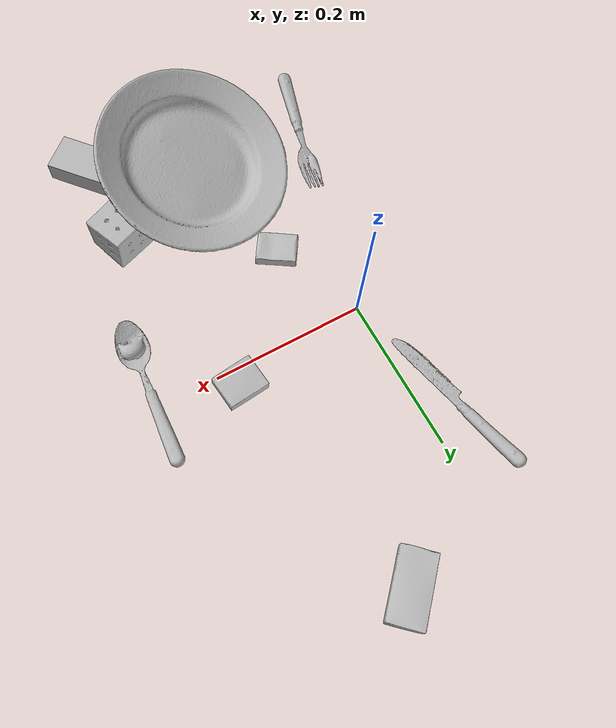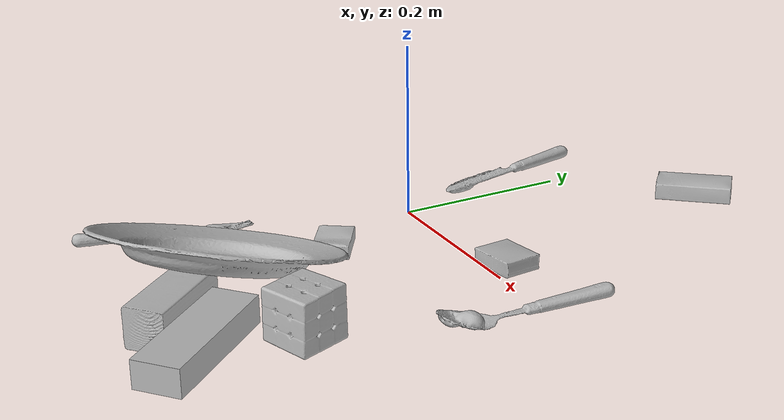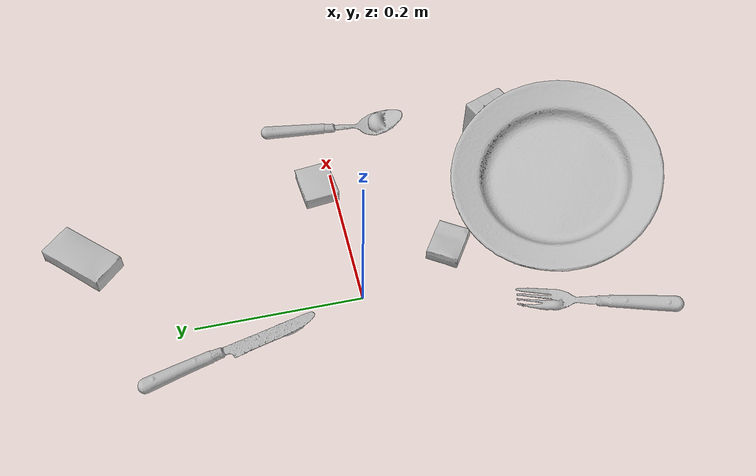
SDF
<sdf version="1.4">
  <world name="default">
    <light name="light1" type="point">
      <pose>0 0 1 0 0 0</pose>
      <diffuse>3 3 3 1</diffuse>
      <specular>3 3 3 1</specular>
    </light>
    <light name="light2" type="point">
      <pose>0 0.5 2 0 0 0</pose>
      <diffuse>1 1 1 1</diffuse>
      <specular>1 1 1 1</specular>
    </light>
    <light name="light3" type="point">
      <pose>0 0.5 2 0 0 0</pose>
      <diffuse>3 3 3 1</diffuse>
      <specular>3 3 3 1</specular>
    </light>
    <scene>
      <ambient>0.7 0.7 0.7</ambient>
    </scene>
    <model name="box11">
      <link name="link_box11">
        <collision name="default">
          <geometry>
            <mesh>
              <uri>model://pudding_box/collision_meshes/collision.obj</uri>
              <scale>0.5 0.5 0.5</scale>
            </mesh>
          </geometry>
          <surface>
            <friction>
              <ode>
                <mu>0.5</mu>
                <mu2>0.5</mu2>
              </ode>
            </friction>
          <contact>
        <ode>
            <max_vel>0</max_vel>
            <min_depth>0.0001</min_depth>
            <kp>1e8</kp>
        </ode>
    </contact></surface>
        </collision>
        <visual name="default">
          <geometry>
            <mesh>
              <uri>model://pudding_box/visual_meshes/visual.dae</uri>
              <scale>0.5 0.5 0.5</scale>
            </mesh>
          </geometry>
        </visual>
        <inertial>
          <mass>0.05641884729266167</mass>
          <pose>0.00024474109522998333 0.000403394311433658 -0.00025944141088984907 0.005213101771016666 -0.006603799659696515 0.020079828883224148</pose>
          <inertia>
            <ixx>1.5944652e-05</ixx>
            <iyy>1.0727675e-05</iyy>
            <izz>2.3546443e-05</izz>
            <ixy>0</ixy>
            <ixz>0</ixz>
            <iyz>0</iyz>
          </inertia>
        </inertial>
      </link>
      <pose>0.17850929498672485 0.021386820822954178 0.009862900711596012 0.022348489860508927 -0.011391752270959683 -1.4615028792708957</pose>
    </model>
    <model name="box12">
      <link name="link_box12">
        <collision name="default">
          <geometry>
            <mesh>
              <uri>model://wood_block/collision_meshes/collision.obj</uri>
              <scale>0.5 0.5 0.5</scale>
            </mesh>
          </geometry>
          <surface>
            <friction>
              <ode>
                <mu>0.5</mu>
                <mu2>0.5</mu2>
              </ode>
            </friction>
          <contact>
        <ode>
            <max_vel>0</max_vel>
            <min_depth>0.0001</min_depth>
            <kp>1e8</kp>
        </ode>
    </contact></surface>
        </collision>
        <visual name="default">
          <geometry>
            <mesh>
              <uri>model://wood_block/visual_meshes/visual.dae</uri>
              <scale>0.5 0.5 0.5</scale>
            </mesh>
          </geometry>
        </visual>
        <inertial>
          <mass>0.1445801854133606</mass>
          <pose>-2.906657982748584e-06 -0.000285404734313488 0.00013204291462898254 -0.052208162951624955 -0.0051926954609686745 -0.006861377578377277</pose>
          <inertia>
            <ixx>4.836754e-05</ixx>
            <iyy>0.0001527931</iyy>
            <izz>0.00015222155</izz>
            <ixy>0</ixy>
            <ixz>0</ixz>
            <iyz>0</iyz>
          </inertia>
        </inertial>
      </link>
      <pose>0.1386599838733673 -0.33186012506484985 0.02262934297323227 -0.005204385406094369 0.0057159789424755915 -0.8542359586251745</pose>
    </model>
    <model name="box13">
      <link name="link_box13">
        <collision name="default">
          <geometry>
            <mesh>
              <uri>model://sugar_box/collision_meshes/collision.obj</uri>
              <scale>0.5 0.5 0.5</scale>
            </mesh>
          </geometry>
          <surface>
            <friction>
              <ode>
                <mu>0.5</mu>
                <mu2>0.5</mu2>
              </ode>
            </friction>
          <contact>
        <ode>
            <max_vel>0</max_vel>
            <min_depth>0.0001</min_depth>
            <kp>1e8</kp>
        </ode>
    </contact></surface>
        </collision>
        <visual name="default">
          <geometry>
            <mesh>
              <uri>model://sugar_box/visual_meshes/visual.dae</uri>
              <scale>0.5 0.5 0.5</scale>
            </mesh>
          </geometry>
        </visual>
        <inertial>
          <mass>0.1187032163143158</mass>
          <pose>0.0005171863595023751 1.924554817378521e-05 -0.00018182402709499002 -0.0004046259512710581 0.0010506635216588768 0.002615378556274426</pose>
          <inertia>
            <ixx>2.4725794e-05</ixx>
            <iyy>7.991886e-05</iyy>
            <izz>9.567241e-05</izz>
            <ixy>0</ixy>
            <ixz>0</ixz>
            <iyz>0</iyz>
          </inertia>
        </inertial>
      </link>
      <pose>0.12310755997896194 0.3222801983356476 0.01139929611235857 0.000775301211240236 -0.02343322739087823 0.8049990126982492</pose>
    </model>
    <model name="box21">
      <link name="link_box21">
        <collision name="default">
          <geometry>
            <mesh>
              <uri>model://jenga/collision_meshes/collision.obj</uri>
              <scale>1.0 1.0 1.0</scale>
            </mesh>
          </geometry>
          <surface>
            <friction>
              <ode>
                <mu>0.5</mu>
                <mu2>0.5</mu2>
              </ode>
            </friction>
          <contact>
        <ode>
            <max_vel>0</max_vel>
            <min_depth>0.0001</min_depth>
            <kp>1e8</kp>
        </ode>
    </contact></surface>
        </collision>
        <visual name="default">
          <geometry>
            <mesh>
              <uri>model://jenga/visual_meshes/visual.dae</uri>
              <scale>1.0 1.0 1.0</scale>
            </mesh>
          </geometry>
        </visual>
        <inertial>
          <mass>0.20898528397083282</mass>
          <pose>-2.502855807051674e-07 -0.00010250010382151231 -4.092339804628864e-05 0.0 -7.342154049184251e-07 0.0</pose>
          <inertia>
            <ixx>5.7831294e-05</ixx>
            <iyy>0.0003918633</iyy>
            <izz>0.00041834736</izz>
            <ixy>0</ixy>
            <ixz>0</ixz>
            <iyz>0</iyz>
          </inertia>
        </inertial>
      </link>
      <pose>0.19800524413585663 -0.32769060134887695 0.014999995008111 -1.5089950877166398e-09 -2.5903073661604953e-10 -0.8568205543903398</pose>
    </model>
    <model name="box22">
      <link name="link_box22">
        <collision name="default">
          <geometry>
            <mesh>
              <uri>model://rubiks_cube/collision_meshes/collision.obj</uri>
              <scale>1.0 1.0 1.0</scale>
            </mesh>
          </geometry>
          <surface>
            <friction>
              <ode>
                <mu>0.5</mu>
                <mu2>0.5</mu2>
              </ode>
            </friction>
          <contact>
        <ode>
            <max_vel>0</max_vel>
            <min_depth>0.0001</min_depth>
            <kp>1e8</kp>
        </ode>
    </contact></surface>
        </collision>
        <visual name="default">
          <geometry>
            <mesh>
              <uri>model://rubiks_cube/visual_meshes/visual.dae</uri>
              <scale>1.0 1.0 1.0</scale>
            </mesh>
          </geometry>
        </visual>
        <inertial>
          <mass>0.28698527812957764</mass>
          <pose>2.6721041649580002e-05 5.2569666877388954e-05 -7.2643156272533815e-06 -0.05467256881712973 -0.09813902151902686 -0.034455808755049874</pose>
          <inertia>
            <ixx>0.00015857864</ixx>
            <iyy>0.00015783912</iyy>
            <izz>0.00015989273</izz>
            <ixy>0</ixy>
            <ixz>0</ixz>
            <iyz>0</iyz>
          </inertia>
        </inertial>
      </link>
      <pose>0.22062289714813232 -0.2304432988166809 0.028678998351097107 2.3719753251796072e-08 -1.7048572282660217e-09 -1.198333381228161</pose>
    </model>
    <model name="box23">
      <link name="link_box23">
        <collision name="default">
          <geometry>
            <mesh>
              <uri>model://cracker_box/collision_meshes/collision.obj</uri>
              <scale>0.25 0.25 0.25</scale>
            </mesh>
          </geometry>
          <surface>
            <friction>
              <ode>
                <mu>0.5</mu>
                <mu2>0.5</mu2>
              </ode>
            </friction>
          <contact>
        <ode>
            <max_vel>0</max_vel>
            <min_depth>0.0001</min_depth>
            <kp>1e8</kp>
        </ode>
    </contact></surface>
        </collision>
        <visual name="default">
          <geometry>
            <mesh>
              <uri>model://cracker_box/visual_meshes/visual.dae</uri>
              <scale>0.25 0.25 0.25</scale>
            </mesh>
          </geometry>
        </visual>
        <inertial>
          <mass>0.04468085244297981</mass>
          <pose>0.00023660414444748312 6.358561222441494e-05 -0.0004257383698131889 -0.0003162076226327385 -0.011106488669128663 0.0025467943033026423</pose>
          <inertia>
            <ixx>7.10301e-06</ixx>
            <iyy>1.1728463e-05</iyy>
            <izz>1.6737597e-05</izz>
            <ixy>0</ixy>
            <ixz>0</ixz>
            <iyz>0</iyz>
          </inertia>
        </inertial>
      </link>
      <pose>0.05064697563648224 -0.11970135569572449 0.00912105105817318 -0.011849942969106431 -0.007364985109370339 2.5530523855646994</pose>
    </model>
    <model name="plate1">
      <link name="link_plate1">
        <collision name="default">
          <geometry>
            <mesh>
              <uri>model://plate/collision_meshes/collision.obj</uri>
              <scale>1.0 1.0 1.0</scale>
            </mesh>
          </geometry>
          <surface>
            <friction>
              <ode>
                <mu>0.5</mu>
                <mu2>0.5</mu2>
              </ode>
            </friction>
          <contact>
        <ode>
            <max_vel>0</max_vel>
            <min_depth>0.0001</min_depth>
            <kp>1e8</kp>
        </ode>
    </contact></surface>
        </collision>
        <visual name="default">
          <geometry>
            <mesh>
              <uri>model://plate/visual_meshes/visual.dae</uri>
              <scale>1.0 1.0 1.0</scale>
            </mesh>
          </geometry>
        </visual>
        <inertial>
          <mass>0.20184239745140076</mass>
          <pose>-0.0006044648471288383 0.00027825962752103806 -0.0010561983799561858 0.0022188105697194356 -0.003225466439192432 0.4526020757977656</pose>
          <inertia>
            <ixx>0.00094422296</ixx>
            <iyy>0.00093519164</iyy>
            <izz>0.0018467589</izz>
            <ixy>0</ixy>
            <ixz>0</ixz>
            <iyz>0</iyz>
          </inertia>
        </inertial>
      </link>
      <pose>0.09653659909963608 -0.2688440680503845 0.049430131912231445 0.037880396602457726 -0.3471108705085752 -0.9626543305657347</pose>
    </model>
    <model name="silverware1">
      <link name="link_silverware1">
        <collision name="default">
          <geometry>
            <mesh>
              <uri>model://fork/collision_meshes/collision.obj</uri>
              <scale>1.0 1.0 1.0</scale>
            </mesh>
          </geometry>
          <surface>
            <friction>
              <ode>
                <mu>0.5</mu>
                <mu2>0.5</mu2>
              </ode>
            </friction>
          <contact>
        <ode>
            <max_vel>0</max_vel>
            <min_depth>0.0001</min_depth>
            <kp>1e8</kp>
        </ode>
    </contact></surface>
        </collision>
        <visual name="default">
          <geometry>
            <mesh>
              <uri>model://fork/visual_meshes/visual.dae</uri>
              <scale>1.0 1.0 1.0</scale>
            </mesh>
          </geometry>
        </visual>
        <inertial>
          <mass>0.03151825815439224</mass>
          <pose>-0.029570046812295914 0.00046588233090005815 0.0003218861820641905 -0.013550990610422763 -0.010977834578584837 0.014453900606944525</pose>
          <inertia>
            <ixx>1.1048933e-06</ixx>
            <iyy>8.2285114e-05</iyy>
            <izz>8.2779305e-05</izz>
            <ixy>0</ixy>
            <ixz>0</ixz>
            <iyz>0</iyz>
          </inertia>
        </inertial>
      </link>
      <pose>-0.06733939796686172 -0.27212363481521606 0.0056871166452765465 -0.17698449809344913 0.025359426596935027 1.2923041037737033</pose>
    </model>
    <model name="silverware2">
      <link name="link_silverware2">
        <collision name="default">
          <geometry>
            <mesh>
              <uri>model://spoon/collision_meshes/collision.obj</uri>
              <scale>1.0 1.0 1.0</scale>
            </mesh>
          </geometry>
          <surface>
            <friction>
              <ode>
                <mu>0.5</mu>
                <mu2>0.5</mu2>
              </ode>
            </friction>
          <contact>
        <ode>
            <max_vel>0</max_vel>
            <min_depth>0.0001</min_depth>
            <kp>1e8</kp>
        </ode>
    </contact></surface>
        </collision>
        <visual name="default">
          <geometry>
            <mesh>
              <uri>model://spoon/visual_meshes/visual.dae</uri>
              <scale>1.0 1.0 1.0</scale>
            </mesh>
          </geometry>
        </visual>
        <inertial>
          <mass>0.04083608463406563</mass>
          <pose>-0.005526324734091759 -0.001603417913429439 -0.0007271658978424966 0.03521537575369321 -0.03906582415196765 0.006150608891198343</pose>
          <inertia>
            <ixx>2.2713682e-06</ixx>
            <iyy>0.0001553799</iyy>
            <izz>0.0001565001</izz>
            <ixy>0</ixy>
            <ixz>0</ixz>
            <iyz>0</iyz>
          </inertia>
        </inertial>
      </link>
      <pose>0.28198662400245667 -0.02044772170484066 0.008385265246033669 0.006729106508134107 0.02689297012094099 -1.6572926509943344</pose>
    </model>
    <model name="silverware3">
      <link name="link_silverware3">
        <collision name="default">
          <geometry>
            <mesh>
              <uri>model://knife/collision_meshes/collision.obj</uri>
              <scale>1.0 1.0 1.0</scale>
            </mesh>
          </geometry>
          <surface>
            <friction>
              <ode>
                <mu>0.5</mu>
                <mu2>0.5</mu2>
              </ode>
            </friction>
          <contact>
        <ode>
            <max_vel>0</max_vel>
            <min_depth>0.0001</min_depth>
            <kp>1e8</kp>
        </ode>
    </contact></surface>
        </collision>
        <visual name="default">
          <geometry>
            <mesh>
              <uri>model://knife/visual_meshes/visual.dae</uri>
              <scale>1.0 1.0 1.0</scale>
            </mesh>
          </geometry>
        </visual>
        <inertial>
          <mass>0.024411516264081</mass>
          <pose>-0.023785248398780823 0.0015275123296305537 5.062021955382079e-05 0.07305335097392199 0.01724841144103926 -0.007409823891069756</pose>
          <inertia>
            <ixx>6.9289786e-07</ixx>
            <iyy>9.37851e-05</iyy>
            <izz>9.400826e-05</izz>
            <ixy>0</ixy>
            <ixz>0</ixz>
            <iyz>0</iyz>
          </inertia>
        </inertial>
      </link>
      <pose>-0.04305276274681091 0.1643114984035492 0.00794652197510004 -0.023907743821126377 -0.014542507995057626 -1.333415671665791</pose>
    </model>
  <physics type="ode">
      <max_contacts>50</max_contacts>
      <ode>
        <solver>
          <type>quick</type>
          <iters>75</iters>
        </solver>
        <constraints>
          <contact_max_correcting_vel>0</contact_max_correcting_vel>
          <contact_surface_layer>0</contact_surface_layer>
        </constraints>
      </ode>
    </physics></world>
</sdf>
